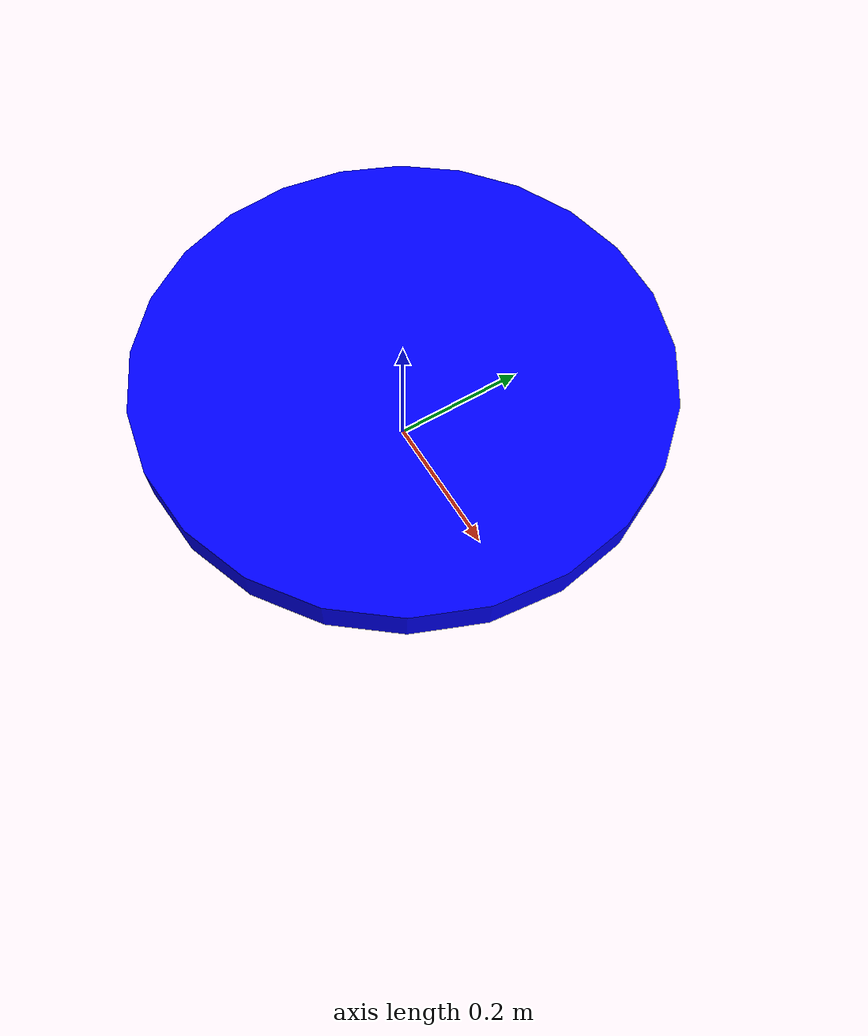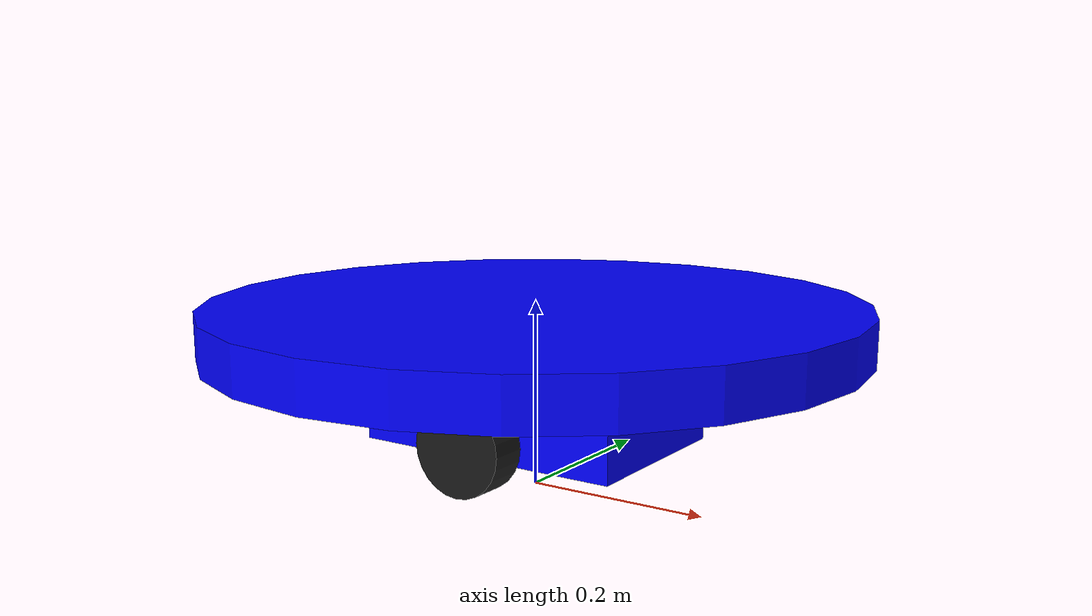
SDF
<?xml version="1.0" ?>
<sdf version="1.8">
  <world name="maze_world">

    <physics name="1ms" type="ignored">
      <max_step_size>0.001</max_step_size>
      <real_time_factor>1.0</real_time_factor>
    </physics>

    <plugin filename="gz-sim-physics-system" name="gz::sim::systems::Physics"/>
    <plugin filename="gz-sim-user-commands-system" name="gz::sim::systems::UserCommands"/>
    <plugin filename="gz-sim-scene-broadcaster-system" name="gz::sim::systems::SceneBroadcaster"/>
    <plugin filename="gz-sim-sensors-system" name="gz::sim::systems::Sensors">
      <render_engine>ogre2</render_engine>
    </plugin>

    <!-- no shadows: the model was trained on flat unlit renders, and a shadow
         draped across a corridor reads as a wall to the wall CNN -->
    <light type="directional" name="sun">
      <cast_shadows>false</cast_shadows>
      <pose>0 0 15 0 0 0</pose>
      <diffuse>0.9 0.9 0.9 1</diffuse>
      <specular>0.3 0.3 0.3 1</specular>
      <direction>-0.3 0.3 -0.9</direction>
    </light>

    <!-- Overhead camera, static, looking straight down. 11x11 maze, cell_size=1.0 -->
    <model name="overhead_camera">
      <static>true</static>
      <pose>5 -5 12 0 1.5708 1.5708</pose>
      <link name="camera_link">
        <sensor name="overhead_camera" type="camera">
          <camera>
            <!-- footprint = 2*height*tan(fov/2) = 2*12*tan(0.43) ~= 11m, matching
                 the 11x11 grid exactly so the maze fills the frame like training does -->
            <horizontal_fov>0.86</horizontal_fov>
            <image>
              <width>256</width>
              <height>256</height>
            </image>
            <clip>
              <near>0.1</near>
              <far>50</far>
            </clip>
            <!-- PERTURBATION: gaussian sensor noise, simulating a cheaper/real camera -->
            <noise>
              <type>gaussian</type>
              <mean>0.0</mean>
              <stddev>0.02</stddev>
            </noise>
          </camera>
          <always_on>true</always_on>
          <update_rate>10</update_rate>
          <visualize>false</visualize>
          <topic>overhead_camera/image_raw</topic>
        </sensor>
      </link>
    </model>

    <model name="robot">
      <pose>0 0 0.1 0 0 0</pose>

      <link name="chassis">
        <inertial>
          <mass>1.0</mass>
          <inertia>
            <ixx>0.01</ixx><iyy>0.01</iyy><izz>0.01</izz>
            <ixy>0</ixy><ixz>0</ixz><iyz>0</iyz>
          </inertia>
        </inertial>
        <collision name="chassis_collision">
          <geometry><box><size>0.3 0.2 0.1</size></box></geometry>
        </collision>
        <visual name="chassis_visual">
          <geometry><box><size>0.3 0.2 0.1</size></box></geometry>
          <material><ambient>0 0 1 1</ambient><diffuse>0 0 1 1</diffuse></material>
        </visual>
      </link>

      <link name="top_marker">
        <pose>0 0 0.075 0 0 0</pose>
        <visual name="top_marker_visual">
          <geometry><cylinder><radius>0.35</radius><length>0.05</length></cylinder></geometry>
          <material><ambient>0 0 1 1</ambient><diffuse>0 0 1 1</diffuse><emissive>0 0 1 1</emissive></material>
        </visual>
      </link>

      <joint name="top_marker_joint" type="fixed">
        <parent>chassis</parent>
        <child>top_marker</child>
      </joint>

      <link name="left_wheel">
        <pose>0 0.12 -0.03 1.5708 0 0</pose>
        <inertial><mass>0.1</mass><inertia><ixx>0.001</ixx><iyy>0.001</iyy><izz>0.001</izz><ixy>0</ixy><ixz>0</ixz><iyz>0</iyz></inertia></inertial>
        <collision name="left_wheel_collision">
          <geometry><cylinder><radius>0.05</radius><length>0.04</length></cylinder></geometry>
        </collision>
        <visual name="left_wheel_visual">
          <geometry><cylinder><radius>0.05</radius><length>0.04</length></cylinder></geometry>
          <material><ambient>0.1 0.1 0.1 1</ambient></material>
        </visual>
      </link>

      <link name="right_wheel">
        <pose>0 -0.12 -0.03 1.5708 0 0</pose>
        <inertial><mass>0.1</mass><inertia><ixx>0.001</ixx><iyy>0.001</iyy><izz>0.001</izz><ixy>0</ixy><ixz>0</ixz><iyz>0</iyz></inertia></inertial>
        <collision name="right_wheel_collision">
          <geometry><cylinder><radius>0.05</radius><length>0.04</length></cylinder></geometry>
        </collision>
        <visual name="right_wheel_visual">
          <geometry><cylinder><radius>0.05</radius><length>0.04</length></cylinder></geometry>
          <material><ambient>0.1 0.1 0.1 1</ambient></material>
        </visual>
      </link>

      <link name="caster">
        <pose>-0.12 0 -0.02 0 0 0</pose>
        <inertial><mass>0.05</mass><inertia><ixx>0.0001</ixx><iyy>0.0001</iyy><izz>0.0001</izz><ixy>0</ixy><ixz>0</ixz><iyz>0</iyz></inertia></inertial>
        <collision name="caster_collision">
          <geometry><sphere><radius>0.06</radius></sphere></geometry>
          <surface><friction><ode><mu>0.01</mu><mu2>0.01</mu2></ode></friction></surface>
        </collision>
        <visual name="caster_visual">
          <geometry><sphere><radius>0.06</radius></sphere></geometry>
        </visual>
      </link>

      <joint name="left_wheel_joint" type="revolute">
        <parent>chassis</parent>
        <child>left_wheel</child>
        <axis><xyz expressed_in="__model__">0 1 0</xyz></axis>
      </joint>

      <joint name="right_wheel_joint" type="revolute">
        <parent>chassis</parent>
        <child>right_wheel</child>
        <axis><xyz expressed_in="__model__">0 1 0</xyz></axis>
      </joint>

      <joint name="caster_joint" type="fixed">
        <parent>chassis</parent>
        <child>caster</child>
      </joint>

      <plugin filename="gz-sim-diff-drive-system" name="gz::sim::systems::DiffDrive">
        <left_joint>left_wheel_joint</left_joint>
        <right_joint>right_wheel_joint</right_joint>
        <wheel_separation>0.24</wheel_separation>
        <wheel_radius>0.05</wheel_radius>
        <topic>cmd_vel</topic>
        <odom_topic>model/robot/odometry</odom_topic>
        <frame_id>odom</frame_id>
        <child_frame_id>base_link</child_frame_id>
        <max_linear_acceleration>1.0</max_linear_acceleration>
        <min_linear_acceleration>-1.0</min_linear_acceleration>
        <max_angular_acceleration>2.0</max_angular_acceleration>
        <min_angular_acceleration>-2.0</min_angular_acceleration>
      </plugin>

      <plugin filename="gz-sim-pose-publisher-system" name="gz::sim::systems::PosePublisher">
        <publish_link_pose>false</publish_link_pose>
        <publish_model_pose>true</publish_model_pose>
        <use_pose_vector_msg>false</use_pose_vector_msg>
      </plugin>

    </model>

  </world>
</sdf>
